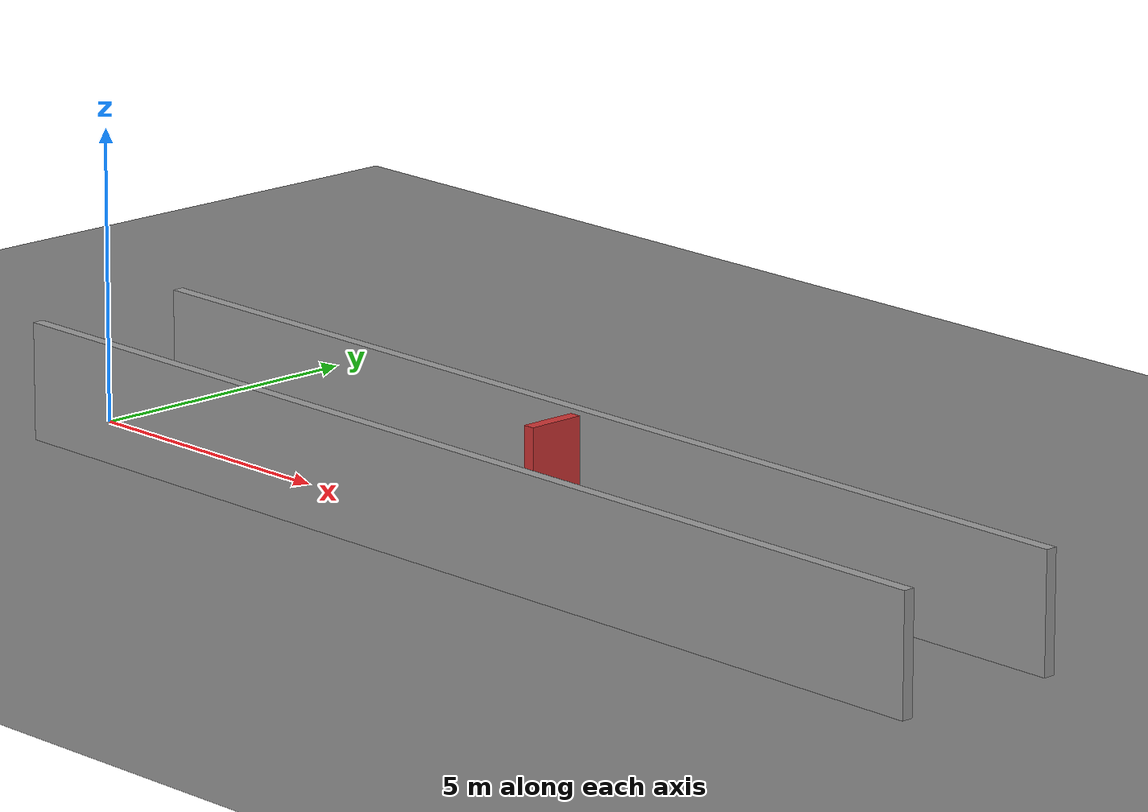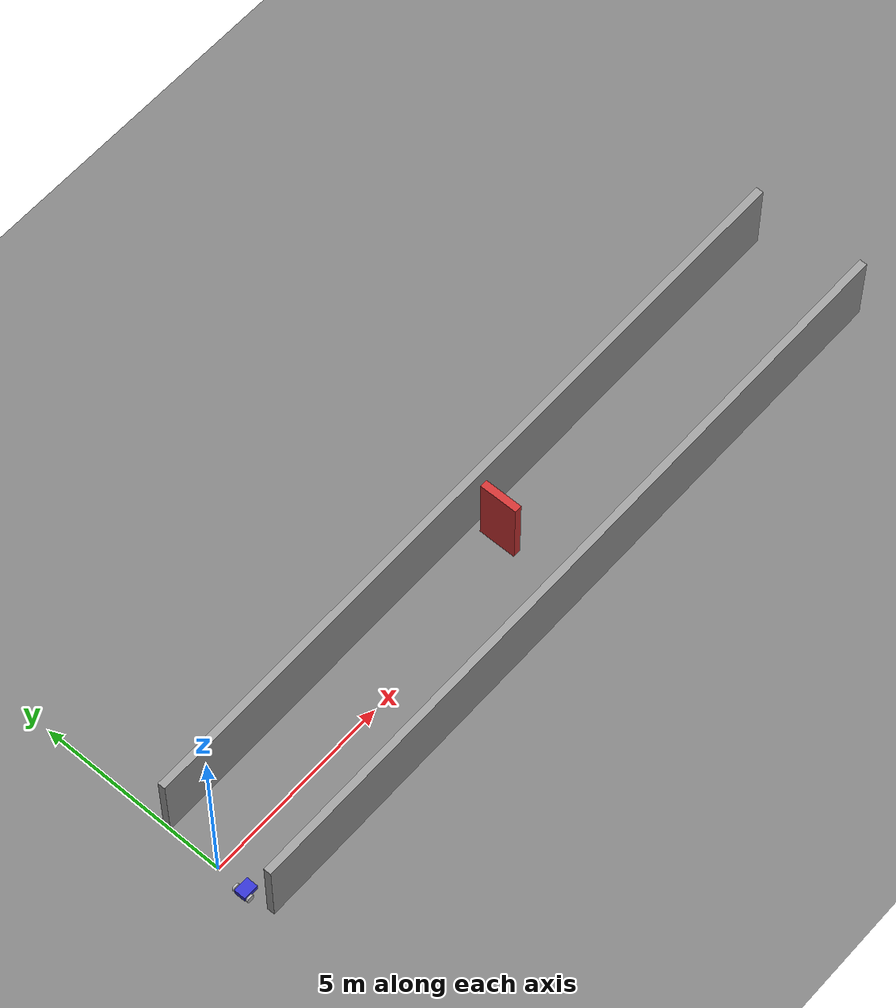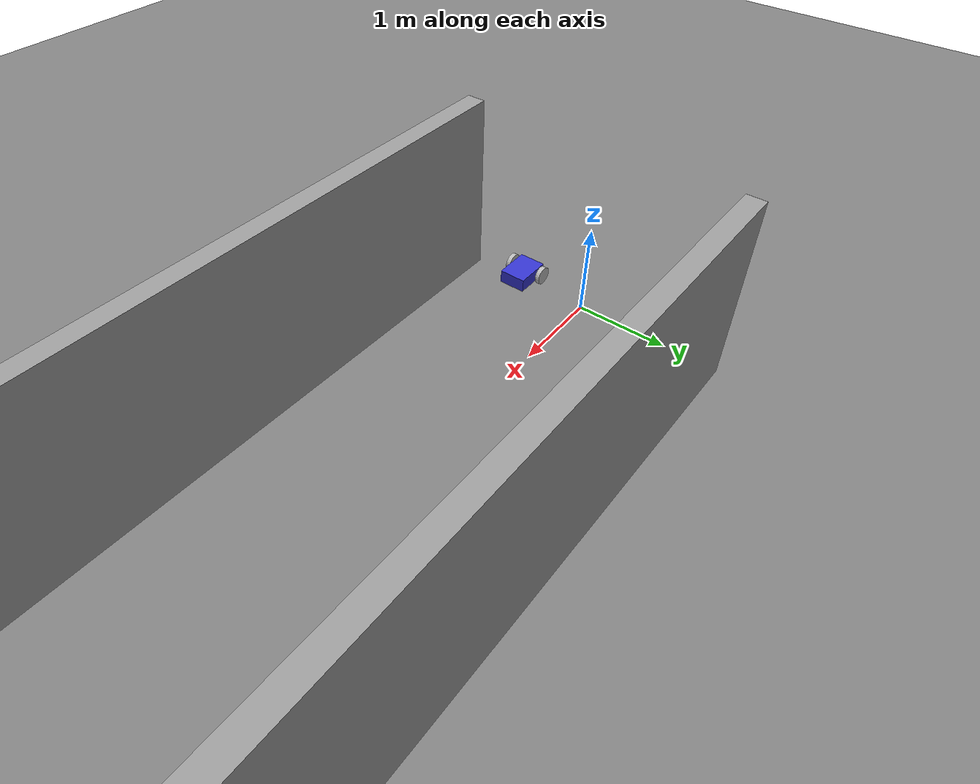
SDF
<?xml version="1.0"?>
<sdf version="1.9">
  <world name="corridor_world">
    <physics name="1ms" type="ode">
      <max_step_size>0.001</max_step_size>
      <real_time_factor>1.0</real_time_factor>
    </physics>
    <plugin filename="gz-sim-physics-system" name="gz::sim::systems::Physics"></plugin>
    <plugin filename="gz-sim-user-commands-system" name="gz::sim::systems::UserCommands"></plugin>
    <plugin filename="gz-sim-scene-broadcaster-system" name="gz::sim::systems::SceneBroadcaster"></plugin>
    <plugin filename="gz-sim-imu-system" name="gz::sim::systems::Imu"></plugin>
    <plugin filename="gz-sim-sensors-system" name="gz::sim::systems::Sensors">
      <render_engine>ogre2</render_engine>
    </plugin>

    <light type="directional" name="sun">
      <cast_shadows>true</cast_shadows>
      <pose>0 0 10 0 0 0</pose>
      <diffuse>0.8 0.8 0.8 1</diffuse>
      <direction>-0.5 0.1 -0.9</direction>
    </light>

    <model name="ground_plane">
      <static>true</static>
      <link name="link">
        <collision name="collision"><geometry><plane><normal>0 0 1</normal><size>30 6</size></plane></geometry></collision>
        <visual name="visual">
          <geometry><plane><normal>0 0 1</normal><size>30 6</size></plane></geometry>
          <material><ambient>0.5 0.5 0.5 1</ambient><diffuse>0.5 0.5 0.5 1</diffuse></material>
        </visual>
      </link>
    </model>

    <model name="wall_left">
      <static>true</static>
      <pose>10 1.5 1 0 0 0</pose>
      <link name="link">
        <collision name="collision"><geometry><box><size>20 0.2 2</size></box></geometry></collision>
        <visual name="visual">
          <geometry><box><size>20 0.2 2</size></box></geometry>
          <material><ambient>0.6 0.6 0.6 1</ambient><diffuse>0.6 0.6 0.6 1</diffuse></material>
        </visual>
      </link>
    </model>

    <model name="wall_right">
      <static>true</static>
      <pose>10 -1.5 1 0 0 0</pose>
      <link name="link">
        <collision name="collision"><geometry><box><size>20 0.2 2</size></box></geometry></collision>
        <visual name="visual">
          <geometry><box><size>20 0.2 2</size></box></geometry>
          <material><ambient>0.6 0.6 0.6 1</ambient><diffuse>0.6 0.6 0.6 1</diffuse></material>
        </visual>
      </link>
    </model>

    <model name="shifting_panel">
      <static>false</static>
      <pose>10 0.7 1 0 0 0</pose>
      <link name="link">
        <inertial><mass>50</mass><inertia><ixx>1</ixx><iyy>1</iyy><izz>1</izz><ixy>0</ixy><ixz>0</ixz><iyz>0</iyz></inertia></inertial>
        <collision name="collision"><geometry><box><size>0.2 1.0 2</size></box></geometry></collision>
        <visual name="visual">
          <geometry><box><size>0.2 1.0 2</size></box></geometry>
          <material><ambient>0.8 0.2 0.2 1</ambient><diffuse>0.8 0.2 0.2 1</diffuse></material>
        </visual>
      </link>
    </model>

    <model name="delta">
      <pose>0 -0.8 0.1 0 0 0</pose>
      <link name="chassis">
        <pose>0 0 0 0 0 0</pose>
        <inertial><mass>5</mass><inertia><ixx>0.1</ixx><iyy>0.1</iyy><izz>0.1</izz><ixy>0</ixy><ixz>0</ixz><iyz>0</iyz></inertia></inertial>
        <collision name="collision"><geometry><box><size>0.4 0.3 0.15</size></box></geometry></collision>
        <visual name="visual">
          <geometry><box><size>0.4 0.3 0.15</size></box></geometry>
          <material><ambient>0.2 0.2 0.8 1</ambient><diffuse>0.2 0.2 0.8 1</diffuse></material>
        </visual>
        <sensor name="imu_sensor" type="imu">
          <topic>imu</topic>
          <update_rate>100</update_rate>
          <always_on>true</always_on>
        </sensor>
        <sensor name="lidar_3d" type="gpu_lidar">
          <pose>0.15 0 0.1 0 0 0</pose>
          <topic>points</topic>
          <update_rate>10</update_rate>
          <always_on>true</always_on>
          <lidar>
            <scan>
              <horizontal><samples>360</samples><resolution>1</resolution><min_angle>-3.14159</min_angle><max_angle>3.14159</max_angle></horizontal>
              <vertical><samples>16</samples><resolution>1</resolution><min_angle>-0.2618</min_angle><max_angle>0.2618</max_angle></vertical>
            </scan>
            <range><min>0.1</min><max>30.0</max><resolution>0.01</resolution></range>
          </lidar>
        </sensor>
      </link>
      <link name="left_wheel">
        <pose>-0.1 0.2 0 -1.5707 0 0</pose>
        <inertial><mass>0.5</mass><inertia><ixx>0.01</ixx><iyy>0.01</iyy><izz>0.01</izz><ixy>0</ixy><ixz>0</ixz><iyz>0</iyz></inertia></inertial>
        <collision name="collision"><geometry><cylinder><radius>0.1</radius><length>0.05</length></cylinder></geometry></collision>
        <visual name="visual"><geometry><cylinder><radius>0.1</radius><length>0.05</length></cylinder></geometry></visual>
      </link>
      <link name="right_wheel">
        <pose>-0.1 -0.2 0 -1.5707 0 0</pose>
        <inertial><mass>0.5</mass><inertia><ixx>0.01</ixx><iyy>0.01</iyy><izz>0.01</izz><ixy>0</ixy><ixz>0</ixz><iyz>0</iyz></inertia></inertial>
        <collision name="collision"><geometry><cylinder><radius>0.1</radius><length>0.05</length></cylinder></geometry></collision>
        <visual name="visual"><geometry><cylinder><radius>0.1</radius><length>0.05</length></cylinder></geometry></visual>
      </link>
      <link name="caster">
        <pose>0.15 0 -0.05 0 0 0</pose>
        <inertial><mass>0.2</mass><inertia><ixx>0.001</ixx><iyy>0.001</iyy><izz>0.001</izz><ixy>0</ixy><ixz>0</ixz><iyz>0</iyz></inertia></inertial>
        <collision name="collision"><geometry><sphere><radius>0.05</radius></sphere></geometry></collision>
        <visual name="visual"><geometry><sphere><radius>0.05</radius></sphere></geometry></visual>
      </link>
      <joint name="left_wheel_joint" type="revolute">
        <parent>chassis</parent><child>left_wheel</child>
        <axis><xyz>0 0 1</xyz></axis>
      </joint>
      <joint name="right_wheel_joint" type="revolute">
        <parent>chassis</parent><child>right_wheel</child>
        <axis><xyz>0 0 1</xyz></axis>
      </joint>
      <joint name="caster_joint" type="ball">
        <parent>chassis</parent><child>caster</child>
      </joint>
      <plugin filename="gz-sim-diff-drive-system" name="gz::sim::systems::DiffDrive">
        <left_joint>left_wheel_joint</left_joint>
        <right_joint>right_wheel_joint</right_joint>
        <wheel_separation>0.4</wheel_separation>
        <wheel_radius>0.1</wheel_radius>
        <odom_publish_frequency>30</odom_publish_frequency>
        <topic>cmd_vel</topic>
      </plugin>
      <plugin filename="gz-sim-odometry-publisher-system" name="gz::sim::systems::OdometryPublisher">
        <odom_frame>odom</odom_frame>
        <robot_base_frame>delta</robot_base_frame>
      </plugin>
      <plugin filename="gz-sim-joint-state-publisher-system" name="gz::sim::systems::JointStatePublisher"></plugin>
    </model>
  </world>
</sdf>
